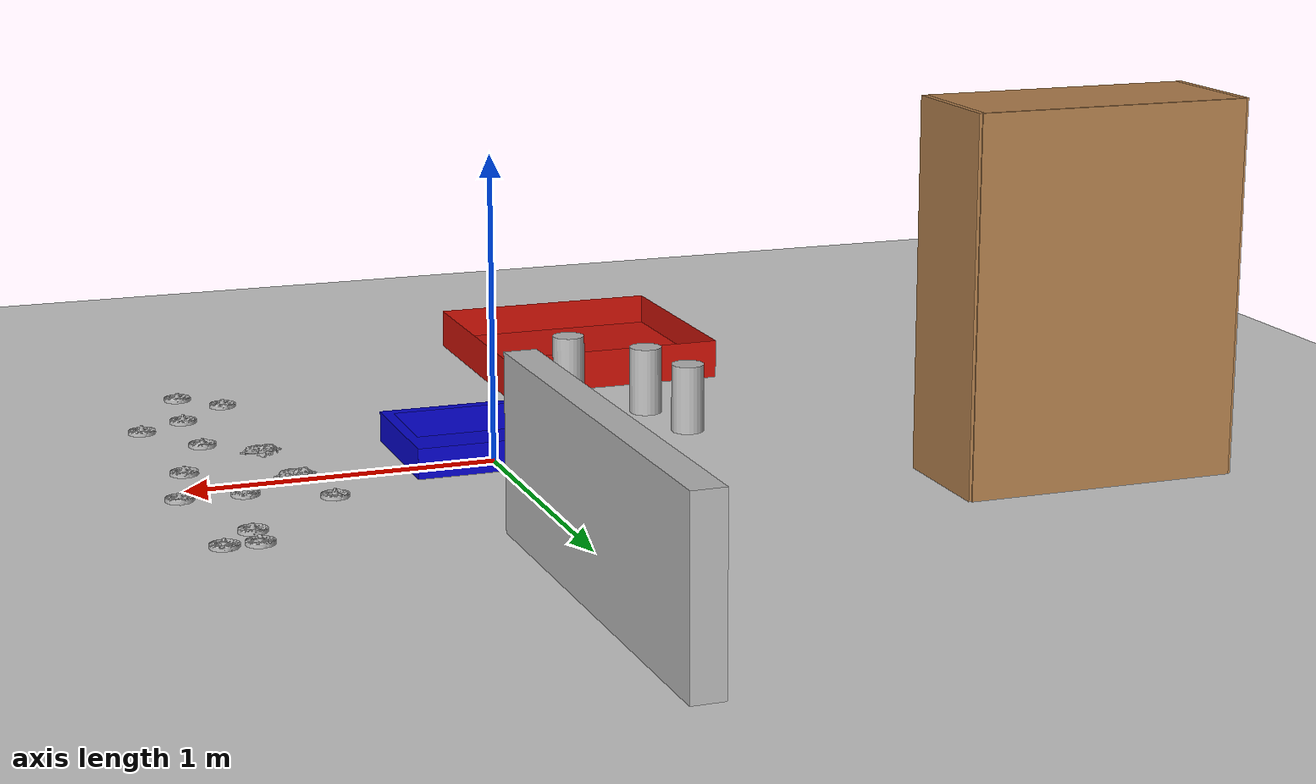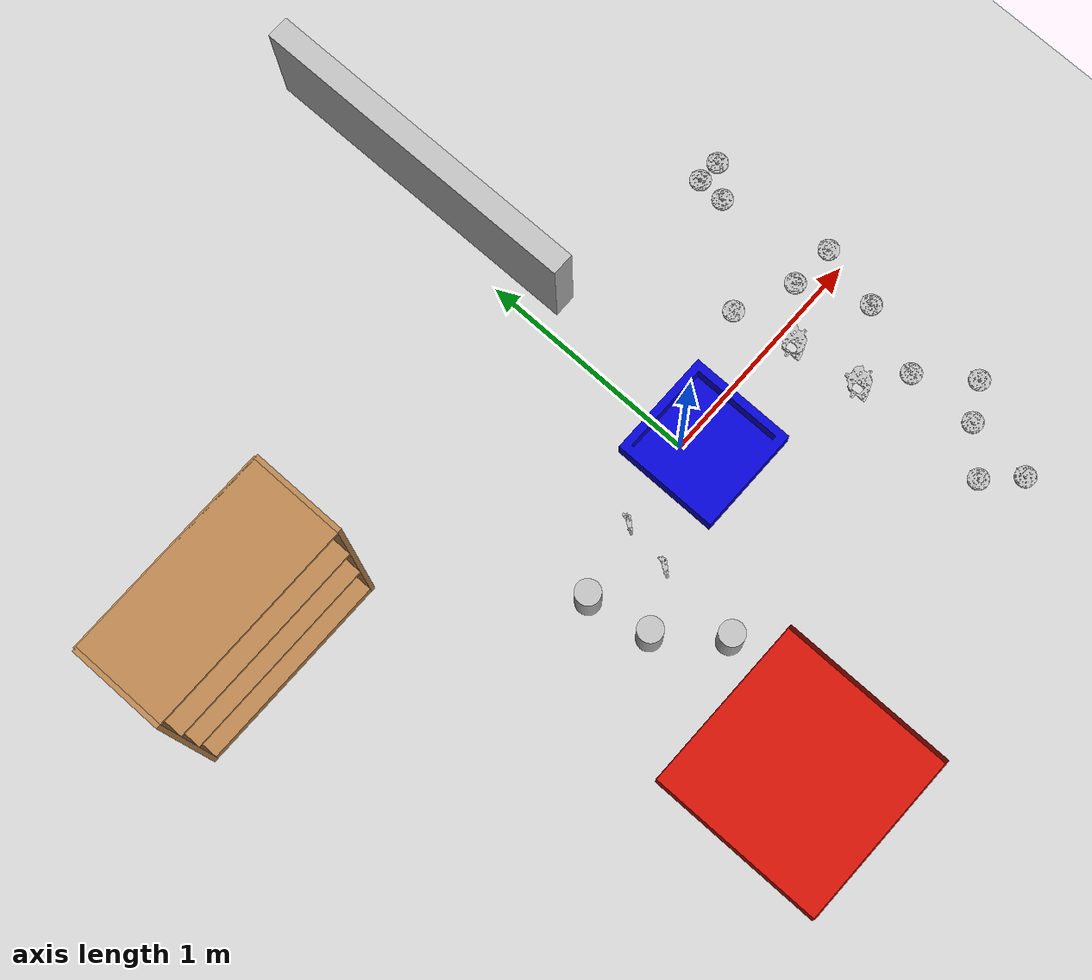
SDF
<sdf version="1.7">
 <world name="default">
  <model name="ground_plane">
   <static>1</static>
   <link name="link">
    <collision name="collision">
     <geometry><plane><normal>0 0 1</normal><size>100 100</size></plane></geometry>
     <surface>
      <contact><collide_bitmask>65535</collide_bitmask></contact>
      <friction><ode><mu>100</mu><mu2>50</mu2></ode></friction>
     </surface>
    </collision>
    <visual name="visual">
     <cast_shadows>0</cast_shadows>
     <geometry><plane><normal>0 0 1</normal><size>100 100</size></plane></geometry>
     <material>
      <script><uri>file://media/materials/scripts/gazebo.material</uri><name>Gazebo/Grey</name></script>
     </material>
    </visual>
   </link>
  </model>
  <model name="object_box">
   <pose>0.056627 -0.071259 0 0 -0 0</pose>
   <static>1</static>
   <link name="object_box">
    <inertial>
     <mass>0.2</mass>
     <inertia><ixx>0.0005</ixx><ixy>0</ixy><ixz>0</ixz><iyy>0.0005</iyy><iyz>0</iyz><izz>0.0005</izz></inertia>
    </inertial>
    <collision name="collision">
     <geometry><mesh><uri>model://object_box/meshed/object_box_kai_kai.dae</uri></mesh></geometry>
    </collision>
    <visual name="visual">
     <geometry><mesh><uri>model://object_box/meshed/object_box_kai_kai.dae</uri></mesh></geometry>
    </visual>
   </link>
  </model>
  <model name="HV8">
   <pose>0.966245 -0.194188 -8e-06 -0.000181 0.000298 0.004503</pose>
   <static>0</static>
   <link name="HV8">
    <inertial>
     <mass>0.05</mass>
     <inertia><ixx>0.0002</ixx><ixy>0</ixy><ixz>0</ixz><iyy>0.0002</iyy><iyz>0</iyz><izz>0.0002</izz></inertia>
    </inertial>
    <collision name="collishin">
     <geometry><mesh><uri>model://HV8/meshes/HV8_1.stl</uri></mesh></geometry>
    </collision>
    <visual name="visual"><geometry><mesh><uri>model://HV8/meshes/HV8_1.stl</uri></mesh></geometry></visual>
   </link>
  </model>
  <model name="HV8_3">
   <pose>1.03092 0.0885 -1.8e-05 0.000274 0.000329 0.001033</pose>
   <static>0</static>
   <link name="HV8">
    <inertial>
     <mass>0.05</mass>
     <inertia><ixx>0.0002</ixx><ixy>0</ixy><ixz>0</ixz><iyy>0.0002</iyy><iyz>0</iyz><izz>0.0002</izz></inertia>
    </inertial>
    <collision name="collishin">
     <geometry><mesh><uri>model://HV8/meshes/HV8_1.stl</uri></mesh></geometry>
    </collision>
    <visual name="visual"><geometry><mesh><uri>model://HV8/meshes/HV8_1.stl</uri></mesh></geometry></visual>
   </link>
  </model>
  <model name="HV8_6">
   <pose>1.00608 0.672146 0.024779 0.000881 0.000192 0.002801</pose>
   <static>0</static>
   <link name="HV8">
    <inertial>
     <mass>0.05</mass>
     <inertia><ixx>0.0002</ixx><ixy>0</ixy><ixz>0</ixz><iyy>0.0002</iyy><iyz>0</iyz><izz>0.0002</izz></inertia>
    </inertial>
    <collision name="collishin">
     <geometry><mesh><uri>model://HV8/meshes/HV8_1.stl</uri></mesh></geometry>
    </collision>
    <visual name="visual"><geometry><mesh><uri>model://HV8/meshes/HV8_1.stl</uri></mesh></geometry></visual>
   </link>
  </model>
  <model name="HV8_10">
   <pose>1.01224 -0.727235 -1.8e-05 0.000274 0.000329 0.001643</pose>
   <static>0</static>
   <link name="HV8">
    <inertial>
     <mass>0.05</mass>
     <inertia><ixx>0.0002</ixx><ixy>0</ixy><ixz>0</ixz><iyy>0.0002</iyy><iyz>0</iyz><izz>0.0002</izz></inertia>
    </inertial>
    <collision name="collishin">
     <geometry><mesh><uri>model://HV8/meshes/HV8_1.stl</uri></mesh></geometry>
    </collision>
    <visual name="visual"><geometry><mesh><uri>model://HV8/meshes/HV8_1.stl</uri></mesh></geometry></visual>
   </link>
  </model>
  <model name="HV8_11">
   <pose>0.857552 -0.819297 -1.8e-05 0.000274 0.000329 0.001026</pose>
   <static>0</static>
   <link name="HV8">
    <inertial>
     <mass>0.05</mass>
     <inertia><ixx>0.0002</ixx><ixy>0</ixy><ixz>0</ixz><iyy>0.0002</iyy><iyz>0</iyz><izz>0.0002</izz></inertia>
    </inertial>
    <collision name="collishin">
     <geometry><mesh><uri>model://HV8/meshes/HV8_1.stl</uri></mesh></geometry>
    </collision>
    <visual name="visual"><geometry><mesh><uri>model://HV8/meshes/HV8_1.stl</uri></mesh></geometry></visual>
   </link>
  </model>
  <model name="HV8_12">
   <pose>0.823673 -1.11989 -3e-06 -0.000159 7.4e-05 0.001026</pose>
   <static>0</static>
   <link name="HV8">
    <inertial>
     <mass>0.05</mass>
     <inertia><ixx>0.0002</ixx><ixy>0</ixy><ixz>0</ixz><iyy>0.0002</iyy><iyz>0</iyz><izz>0.0002</izz></inertia>
    </inertial>
    <collision name="collishin">
     <geometry><mesh><uri>model://HV8/meshes/HV8_1.stl</uri></mesh></geometry>
    </collision>
    <visual name="visual"><geometry><mesh><uri>model://HV8/meshes/HV8_1.stl</uri></mesh></geometry></visual>
   </link>
  </model>
  <model name="HV8_13">
   <pose>0.850481 -0.502587 3e-06 -0.000164 -2.7e-05 0.001025</pose>
   <static>0</static>
   <link name="HV8">
    <inertial>
     <mass>0.05</mass>
     <inertia><ixx>0.0002</ixx><ixy>0</ixy><ixz>0</ixz><iyy>0.0002</iyy><iyz>0</iyz><izz>0.0002</izz></inertia>
    </inertial>
    <collision name="collishin">
     <geometry><mesh><uri>model://HV8/meshes/HV8_1.stl</uri></mesh></geometry>
    </collision>
    <visual name="visual"><geometry><mesh><uri>model://HV8/meshes/HV8_1.stl</uri></mesh></geometry></visual>
   </link>
  </model>
  <model name="HV8_14">
   <pose>0.690606 -0.984481 -1.8e-05 0.000274 0.000329 0.001026</pose>
   <static>0</static>
   <link name="HV8">
    <inertial>
     <mass>0.05</mass>
     <inertia><ixx>0.0002</ixx><ixy>0</ixy><ixz>0</ixz><iyy>0.0002</iyy><iyz>0</iyz><izz>0.0002</izz></inertia>
    </inertial>
    <collision name="collishin">
     <geometry><mesh><uri>model://HV8/meshes/HV8_1.stl</uri></mesh></geometry>
    </collision>
    <visual name="visual"><geometry><mesh><uri>model://HV8/meshes/HV8_1.stl</uri></mesh></geometry></visual>
   </link>
  </model>
  <model name="HV8_20">
   <pose>0.89908 0.552951 0.024772 0.002559 -0.000489 0.002609</pose>
   <static>0</static>
   <link name="HV8">
    <inertial>
     <mass>0.05</mass>
     <inertia><ixx>0.0002</ixx><ixy>0</ixy><ixz>0</ixz><iyy>0.0002</iyy><iyz>0</iyz><izz>0.0002</izz></inertia>
    </inertial>
    <collision name="collishin">
     <geometry><mesh><uri>model://HV8/meshes/HV8_1.stl</uri></mesh></geometry>
    </collision>
    <visual name="visual"><geometry><mesh><uri>model://HV8/meshes/HV8_1.stl</uri></mesh></geometry></visual>
   </link>
  </model>
  <model name="HV8_21">
   <pose>0.901939 0.675668 0.024778 0.000777 -0.000183 0.002606</pose>
   <static>0</static>
   <link name="HV8">
    <inertial>
     <mass>0.05</mass>
     <inertia><ixx>0.0002</ixx><ixy>0</ixy><ixz>0</ixz><iyy>0.0002</iyy><iyz>0</iyz><izz>0.0002</izz></inertia>
    </inertial>
    <collision name="collishin">
     <geometry><mesh><uri>model://HV8/meshes/HV8_1.stl</uri></mesh></geometry>
    </collision>
    <visual name="visual"><geometry><mesh><uri>model://HV8/meshes/HV8_1.stl</uri></mesh></geometry></visual>
   </link>
  </model>
  <model name="HV8_29">
   <pose>0.830443 0.098049 -1.8e-05 0.000274 0.000329 0.299456</pose>
   <static>0</static>
   <link name="HV8">
    <inertial>
     <mass>0.05</mass>
     <inertia><ixx>0.0002</ixx><ixy>0</ixy><ixz>0</ixz><iyy>0.0002</iyy><iyz>0</iyz><izz>0.0002</izz></inertia>
    </inertial>
    <collision name="collishin">
     <geometry><mesh><uri>model://HV8/meshes/HV8_1.stl</uri></mesh></geometry>
    </collision>
    <visual name="visual"><geometry><mesh><uri>model://HV8/meshes/HV8_1.stl</uri></mesh></geometry></visual>
   </link>
  </model>
  <model name="HV8_30">
   <pose>0.573008 0.210166 -3e-06 -0.000159 7.4e-05 0.001024</pose>
   <static>0</static>
   <link name="HV8">
    <inertial>
     <mass>0.05</mass>
     <inertia><ixx>0.0002</ixx><ixy>0</ixy><ixz>0</ixz><iyy>0.0002</iyy><iyz>0</iyz><izz>0.0002</izz></inertia>
    </inertial>
    <collision name="collishin">
     <geometry><mesh><uri>model://HV8/meshes/HV8_1.stl</uri></mesh></geometry>
    </collision>
    <visual name="visual"><geometry><mesh><uri>model://HV8/meshes/HV8_1.stl</uri></mesh></geometry></visual>
   </link>
  </model>
  <model name="beer">
   <link name="link">
    <pose>0 0 0.115 0 -0 0</pose>
    <inertial>
     <mass>0.39</mass>
     <inertia><ixx>0.00058</ixx><ixy>0</ixy><ixz>0</ixz><iyy>0.00058</iyy><iyz>0</iyz><izz>0.00019</izz></inertia>
    </inertial>
    <collision name="collision">
     <geometry><cylinder><radius>0.055</radius><length>0.23</length></cylinder></geometry>
    </collision>
    <visual name="visual">
     <geometry><cylinder><radius>0.055</radius><length>0.23</length></cylinder></geometry>
     <material>
      <script>
       <uri>model://beer/materials/scripts</uri>
       <uri>model://beer/materials/textures</uri>
       <name>Beer/Diffuse</name>
      </script>
     </material>
    </visual>
   </link>
   <pose>-0.470112 -0.66329 -5.8e-05 4e-06 -1e-06 -0.000325</pose>
  </model>
  <model name="beer_0">
   <link name="link">
    <pose>0 0 0.115 0 -0 0</pose>
    <inertial>
     <mass>0.39</mass>
     <inertia><ixx>0.00058</ixx><ixy>0</ixy><ixz>0</ixz><iyy>0.00058</iyy><iyz>0</iyz><izz>0.00019</izz></inertia>
    </inertial>
    <collision name="collision">
     <geometry><cylinder><radius>0.055</radius><length>0.23</length></cylinder></geometry>
    </collision>
    <visual name="visual">
     <geometry><cylinder><radius>0.055</radius><length>0.23</length></cylinder></geometry>
     <material>
      <script>
       <uri>model://beer/materials/scripts</uri>
       <uri>model://beer/materials/textures</uri>
       <name>Beer/Diffuse</name>
      </script>
     </material>
    </visual>
   </link>
   <pose>-0.668181 -0.417371 -5.8e-05 4e-06 -1e-06 -0.000315</pose>
  </model>
  <model name="beer_1">
   <link name="link">
    <pose>0 0 0.115 0 -0 0</pose>
    <inertial>
     <mass>0.39</mass>
     <inertia><ixx>0.00058</ixx><ixy>0</ixy><ixz>0</ixz><iyy>0.00058</iyy><iyz>0</iyz><izz>0.00019</izz></inertia>
    </inertial>
    <collision name="collision">
     <geometry><cylinder><radius>0.055</radius><length>0.23</length></cylinder></geometry>
    </collision>
    <visual name="visual">
     <geometry><cylinder><radius>0.055</radius><length>0.23</length></cylinder></geometry>
     <material>
      <script>
       <uri>model://beer/materials/scripts</uri>
       <uri>model://beer/materials/textures</uri>
       <name>Beer/Diffuse</name>
      </script>
     </material>
    </visual>
   </link>
   <pose>-0.719115 -0.140666 -5.8e-05 4e-06 -1e-06 -0.000301</pose>
  </model>
  <model name="HV6">
   <pose>0.627462 -0.055268 0 0 -0 0</pose>
   <static>1</static>
   <link name="HV6">
    <collision name="collr"><geometry><mesh><uri>model://HV6/meshes/HV6_1.stl</uri></mesh></geometry></collision>
    <visual name="visual"><geometry><mesh><uri>model://HV6/meshes/HV6_1.stl</uri></mesh></geometry></visual>
   </link>
  </model>
  <model name="HV6_0">
   <pose>0.673012 -0.366105 0 0 -0 0</pose>
   <static>1</static>
   <link name="HV6">
    <collision name="collr"><geometry><mesh><uri>model://HV6/meshes/HV6_1.stl</uri></mesh></geometry></collision>
    <visual name="visual"><geometry><mesh><uri>model://HV6/meshes/HV6_1.stl</uri></mesh></geometry></visual>
   </link>
  </model>
  <model name="HV7">
   <pose>-0.430043 -0.295236 0 0 -0 0</pose>
   <static>1</static>
   <link name="HV7">
    <inertial>
     <mass>0.2</mass>
     <inertia><ixx>0.0005</ixx><ixy>0</ixy><ixz>0</ixz><iyy>0.0005</iyy><iyz>0</iyz><izz>0.0005</izz></inertia>
    </inertial>
    <collision name="collishin">
     <geometry><mesh><uri>model://HV7/meshes/HV7_1.stl</uri></mesh></geometry>
    </collision>
    <visual name="visual"><geometry><mesh><uri>model://HV7/meshes/HV7_1.stl</uri></mesh></geometry></visual>
   </link>
  </model>
  <model name="HV7_0">
   <pose>-0.392424 -0.072808 0 0 -0 0</pose>
   <static>1</static>
   <link name="HV7">
    <inertial>
     <mass>0.2</mass>
     <inertia><ixx>0.0005</ixx><ixy>0</ixy><ixz>0</ixz><iyy>0.0005</iyy><iyz>0</iyz><izz>0.0005</izz></inertia>
    </inertial>
    <collision name="collishin">
     <geometry><mesh><uri>model://HV7/meshes/HV7_1.stl</uri></mesh></geometry>
    </collision>
    <visual name="visual"><geometry><mesh><uri>model://HV7/meshes/HV7_1.stl</uri></mesh></geometry></visual>
   </link>
  </model>
  <model name="collision_object">
   <pose>0.126742 1.49042 0.274699 0.000404 -1.9e-05 0.00908</pose>
   <static>0</static>
   <link name="collision_object">
    <inertial>
     <mass>1</mass>
     <inertia><ixx>0.1</ixx><ixy>0</ixy><ixz>0</ixz><iyy>0.1</iyy><iyz>0</iyz><izz>0.1</izz></inertia>
    </inertial>
    <collision name="collision"><geometry><box><size>0.1 1.5 0.55</size></box></geometry></collision>
    <visual name="visual"><geometry><box><size>0.1 1.5 0.55</size></box></geometry></visual>
   </link>
  </model>
  <model name="object_box_0">
   <pose>-0.676619 -1.20658 0 0 -0 0</pose>
   <static>1</static>
   <link name="object_box">
    <inertial>
     <mass>0.2</mass>
     <inertia><ixx>0.0005</ixx><ixy>0</ixy><ixz>0</ixz><iyy>0.0005</iyy><iyz>0</iyz><izz>0.0005</izz></inertia>
    </inertial>
    <collision name="collision">
     <geometry><mesh><uri>model://object_box/meshed/object_box_2.dae</uri></mesh></geometry>
    </collision>
    <visual name="visual">
     <geometry><mesh><uri>model://object_box/meshed/object_box_2.dae</uri></mesh></geometry>
    </visual>
   </link>
  </model>
  <model name="bookshelf_0">
   <static>1</static>
   <link name="link">
    <inertial><mass>1</mass></inertial>
    <collision name="back">
     <pose>0 0.005 0.6 0 -0 0</pose>
     <geometry><box><size>0.9 0.01 1.2</size></box></geometry>
    </collision>
    <visual name="visual1">
     <pose>0 0.005 0.6 0 -0 0</pose>
     <geometry><box><size>0.9 0.01 1.2</size></box></geometry>
     <material>
      <script><uri>file://media/materials/scripts/gazebo.material</uri><name>Gazebo/Wood</name></script>
     </material>
    </visual>
    <collision name="left_side">
     <pose>0.45 -0.195 0.6 0 -0 0</pose>
     <geometry><box><size>0.02 0.4 1.2</size></box></geometry>
    </collision>
    <visual name="visual2">
     <pose>0.45 -0.195 0.6 0 -0 0</pose>
     <geometry><box><size>0.02 0.4 1.2</size></box></geometry>
     <material>
      <script><uri>file://media/materials/scripts/gazebo.material</uri><name>Gazebo/Wood</name></script>
     </material>
    </visual>
    <collision name="right_side">
     <pose>-0.45 -0.195 0.6 0 -0 0</pose>
     <geometry><box><size>0.02 0.4 1.2</size></box></geometry>
    </collision>
    <visual name="visual3">
     <pose>-0.45 -0.195 0.6 0 -0 0</pose>
     <geometry><box><size>0.02 0.4 1.2</size></box></geometry>
     <material>
      <script><uri>file://media/materials/scripts/gazebo.material</uri><name>Gazebo/Wood</name></script>
     </material>
    </visual>
    <collision name="bottom">
     <pose>0 -0.195 0.03 0 -0 0</pose>
     <geometry><box><size>0.88 0.4 0.06</size></box></geometry>
    </collision>
    <visual name="visual4">
     <pose>0 -0.195 0.03 0 -0 0</pose>
     <geometry><box><size>0.88 0.4 0.06</size></box></geometry>
     <material>
      <script><uri>file://media/materials/scripts/gazebo.material</uri><name>Gazebo/Wood</name></script>
     </material>
    </visual>
    <collision name="top">
     <pose>0 -0.195 1.19 0 -0 0</pose>
     <geometry><box><size>0.88 0.4 0.02</size></box></geometry>
    </collision>
    <visual name="visual5">
     <pose>0 -0.195 1.19 0 -0 0</pose>
     <geometry><box><size>0.88 0.4 0.02</size></box></geometry>
     <material>
      <script><uri>file://media/materials/scripts/gazebo.material</uri><name>Gazebo/Wood</name></script>
     </material>
    </visual>
    <collision name="low_shelf">
     <pose>0 -0.195 0.43 0 -0 0</pose>
     <geometry><box><size>0.88 0.4 0.02</size></box></geometry>
    </collision>
    <visual name="visual6">
     <pose>0 -0.195 0.43 0 -0 0</pose>
     <geometry><box><size>0.88 0.4 0.02</size></box></geometry>
     <material>
      <script><uri>file://media/materials/scripts/gazebo.material</uri><name>Gazebo/Wood</name></script>
     </material>
    </visual>
    <collision name="high_shelf">
     <pose>0 -0.195 0.8 0 -0 0</pose>
     <geometry><box><size>0.88 0.4 0.02</size></box></geometry>
    </collision>
    <visual name="visual7">
     <pose>0 -0.195 0.8 0 -0 0</pose>
     <geometry><box><size>0.88 0.4 0.02</size></box></geometry>
     <material>
      <script><uri>file://media/materials/scripts/gazebo.material</uri><name>Gazebo/Wood</name></script>
     </material>
    </visual>
   </link>
   <pose>-1.69703 0.924542 0 0 -0 0</pose>
  </model>
 </world>
</sdf>
